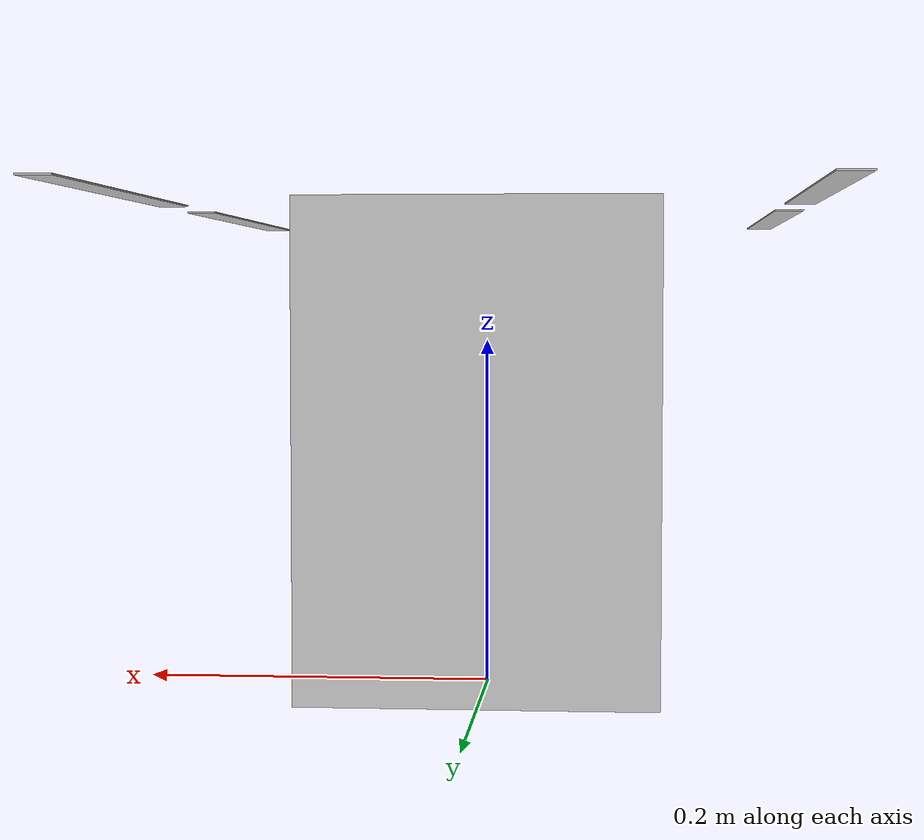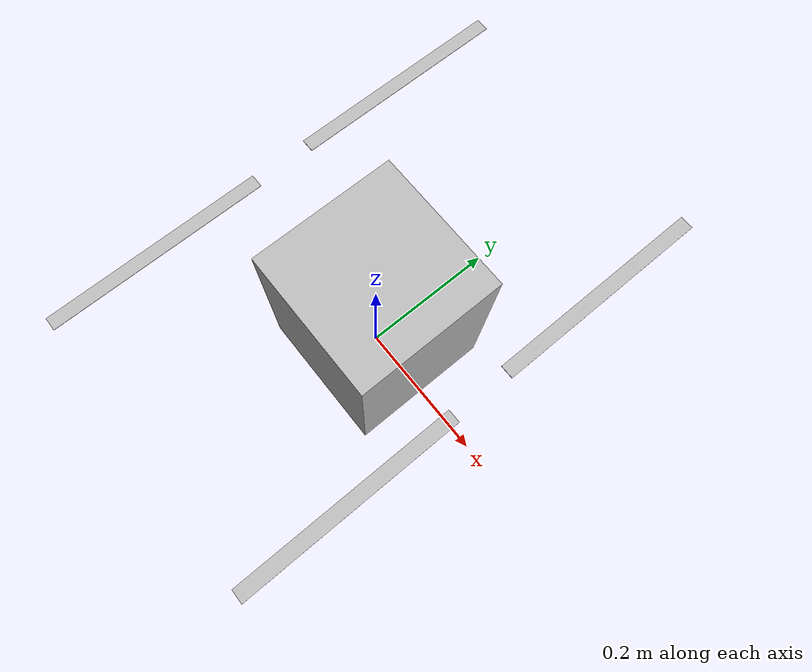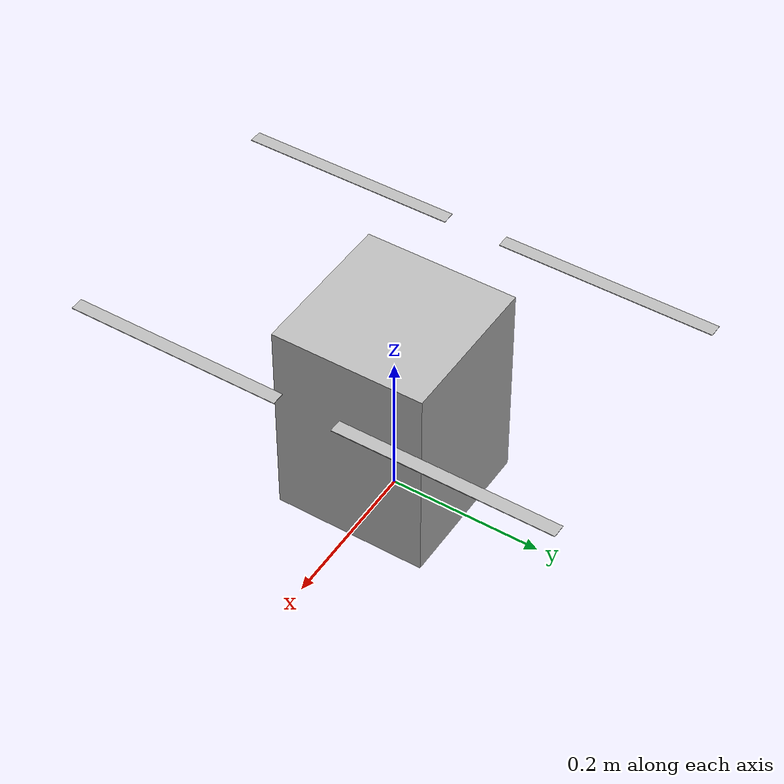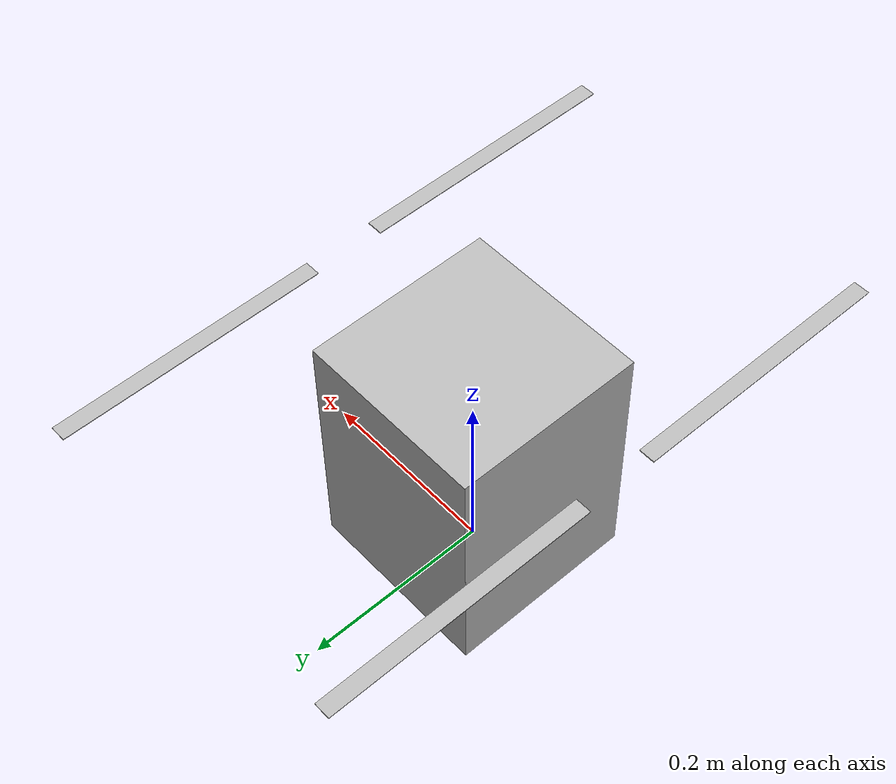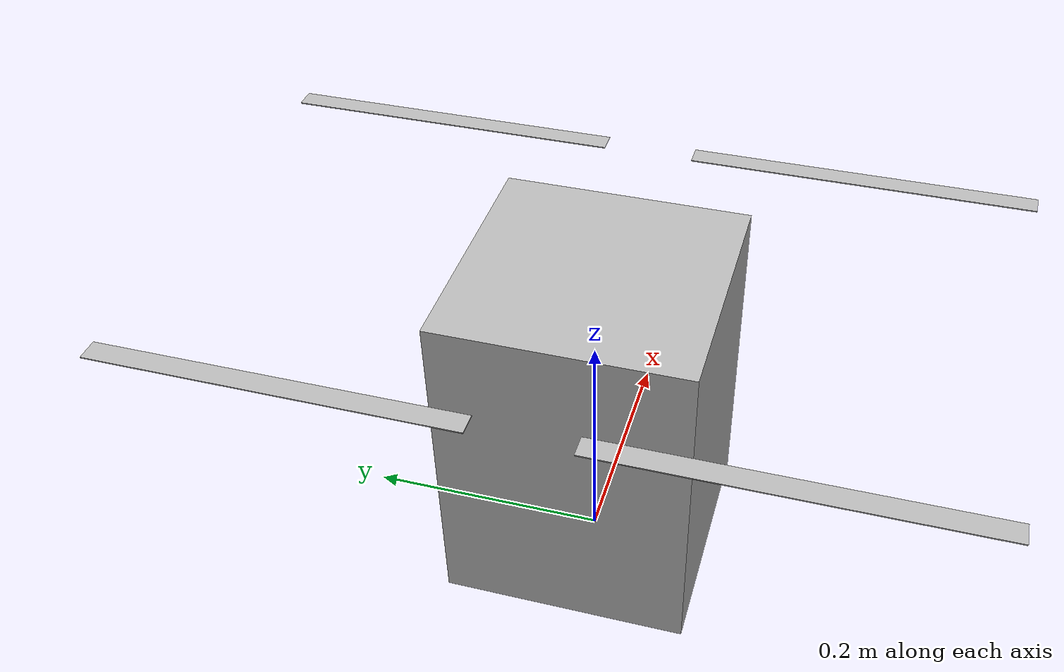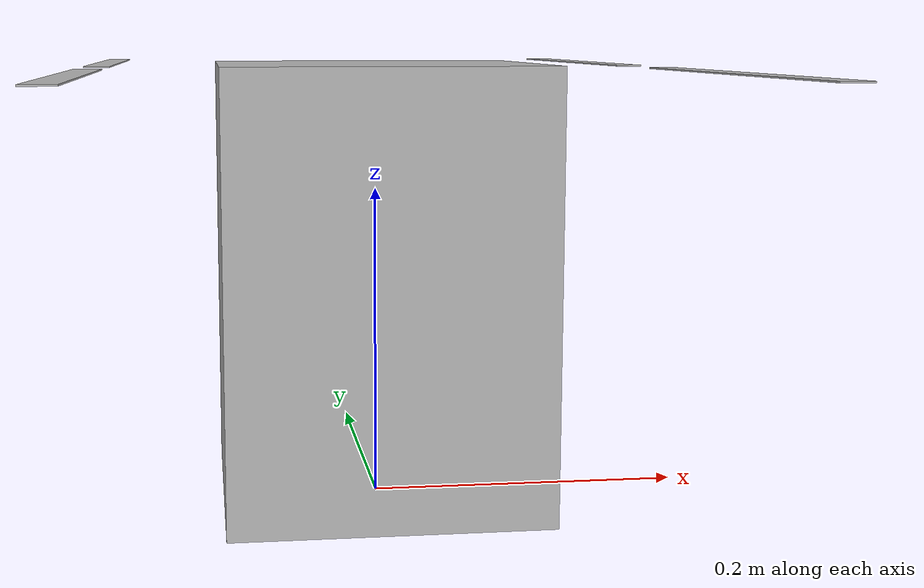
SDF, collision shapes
<?xml version="1.0" encoding="UTF-8"?>
<sdf version='1.9'>
  <model name='custom_x500'>
    <pose>0 0 0.217 0 0 1.57</pose>
    <self_collide>false</self_collide>
    <static>false</static>
    <link name="base_link">
  <inertial>
        <pose>0 0 0.015702 0 0 0</pose>
        <mass>2.245</mass>
        <inertia>
          <ixx>0.0133</ixx>
          <ixy>0</ixy>
          <ixz>0</ixz>
          <iyy>0.0133</iyy>
          <iyz>0</iyz>
          <izz>0.0249</izz>
        </inertia>
      </inertial>
      <gravity>true</gravity>
      <velocity_decay/>
      <visual name="base_link_visual">
        <pose>0 0 0 0 0 0</pose>
        <geometry>
          <mesh>
            <scale>1 1 1</scale>
            <uri>model://x500_dual_200/meshes/uav_frame_x500_simple.dae</uri>
          </mesh>
        </geometry>
      </visual>
      <!-- Collision definition -->
      <collision name="base_link_collision_0">
        <pose> 0 0 -0.076276 0 0 0</pose>
        <geometry>
          <box>
            <size>0.20 0.20 0.278 </size>
          </box>
        </geometry>
        <surface>
          <contact>
            <ode>
              <min_depth>0.001</min_depth>
              <max_vel>0</max_vel>
            </ode>
          </contact>
          <friction>
            <ode/>
          </friction>
        </surface>
      </collision>
<!-- Collision definition END-->
<!-- Flight Sensors  -->
      <sensor name="air_pressure_sensor" type="air_pressure">
        <always_on>1</always_on>
        <update_rate>50</update_rate>
        <air_pressure>
          <pressure>
            <noise type="gaussian">
              <mean>0</mean>
              <stddev>0.01</stddev>
            </noise>
          </pressure>
        </air_pressure>
      </sensor>
      <sensor name="imu_sensor" type="imu">
        <always_on>1</always_on>
        <update_rate>250</update_rate>
      </sensor>
    </link>
<!-- Propellers definition -->
    <link name="rotor_0">
        <gravity>true</gravity>
        <self_collide>false</self_collide>
        <velocity_decay/>
        <pose>0.176876 -0.176876 0.06 0 0 0</pose>
        <inertial>
            <pose>0 0 -0.02 0 0 0</pose>
              <mass>0.005</mass>
              <inertia>
                <ixx>9.75e-07</ixx>
                <ixy>0</ixy>
                <ixz>0</ixz>
                <iyy>0.000166704</iyy>
                <iyz>0</iyz>
                <izz>0.000167604</izz>
              </inertia>
        </inertial>
       <visual name="rotor_0_visual">
        <pose>0 0 0 0 0 0</pose>
        <geometry>
          <mesh>
            <scale>1 1 1</scale>
            <uri>model://x500_dual_200/meshes/holybro_propeller_ccw.dae</uri>
          </mesh>
        </geometry>
      </visual>
      <collision name="rotor_0_collision">
        <pose>0 0 0 0 0 0 </pose>
        <geometry>
          <box>
            <size>0.2792307692307692 0.016923076923076923 0.0008461538461538462</size>
          </box>
        </geometry>
        <surface>
          <contact>
            <ode>
              <min_depth>0.001</min_depth>
              <max_vel>0</max_vel>
            </ode>
          </contact>
          <friction>
            <ode/>
          </friction>
        </surface>
      </collision>
    </link>
    <joint name="rotor_0_joint" type="revolute">
      <parent>base_link</parent>
      <child>rotor_0</child>
      <axis>
        <xyz>0 0 1</xyz>
        <limit>
          <lower>-1e+16</lower>
          <upper>1e+16</upper>
        </limit>
        <dynamics>
          <spring_reference>0</spring_reference>
          <spring_stiffness>0</spring_stiffness>
        </dynamics>
      </axis>
    </joint>

    <link name="rotor_1">
        <gravity>true</gravity>
        <self_collide>false</self_collide>
        <velocity_decay/>
        <pose>-0.176876 0.176876 0.06 0 0 0</pose>
        <inertial>
            <pose>0 0 0 0 0 0</pose>
              <mass>0.005</mass>
              <inertia>
                <ixx>9.75e-07</ixx>
                <ixy>0</ixy>
                <ixz>0</ixz>
                <iyy>0.000166704</iyy>
                <iyz>0</iyz>
                <izz>0.000167604</izz>
              </inertia>
        </inertial>
       <visual name="rotor_1_visual">
        <pose>0 0 0 0 0 0</pose>
        <geometry>
          <mesh>
            <scale>1 1 1</scale>
            <uri>model://x500_dual_200/meshes/holybro_propeller_ccw.dae</uri>
          </mesh>
        </geometry>
      </visual>
      <collision name="rotor_1_collision">
        <pose>0 0 0 0 0 0 </pose>
        <geometry>
          <box>
            <size>0.2792307692307692 0.016923076923076923 0.0008461538461538462</size>
          </box>
        </geometry>
        <surface>
          <contact>
            <ode>
              <min_depth>0.001</min_depth>
              <max_vel>0</max_vel>
            </ode>
          </contact>
          <friction>
            <ode/>
          </friction>
        </surface>
      </collision>
    </link>
    <joint name="rotor_1_joint" type="revolute">
      <parent>base_link</parent>
      <child>rotor_1</child>
      <axis>
        <xyz>0 0 1</xyz>
        <limit>
          <lower>-1e+16</lower>
          <upper>1e+16</upper>
        </limit>
        <dynamics>
          <spring_reference>0</spring_reference>
          <spring_stiffness>0</spring_stiffness>
        </dynamics>
      </axis>
    </joint>

    <link name="rotor_2">
        <gravity>true</gravity>
        <self_collide>false</self_collide>
        <velocity_decay/>
        <pose> 0.176876 0.176876 0.06 0 0 0</pose>
        <inertial>
              <mass>0.005</mass>
              <inertia>
                <ixx>9.75e-07</ixx>
                <ixy>0</ixy>
                <ixz>0</ixz>
                <iyy>0.000166704</iyy>
                <iyz>0</iyz>
                <izz>0.000167604</izz>
              </inertia>
        </inertial>
       <visual name="rotor_2_visual">
        <pose>0 0 0 0 0 0</pose>
        <geometry>
          <mesh>
            <scale>1 1 1</scale>
            <uri>model://x500_dual_200/meshes/holybro_propeller_cw.dae</uri>
          </mesh>
        </geometry>
      </visual>
      <collision name="rotor_2_collision">
        <pose>0 0 0 0 0 0 </pose>
        <geometry>
          <box>
            <size>0.2792307692307692 0.016923076923076923 0.0008461538461538462</size>
          </box>
        </geometry>
        <surface>
          <contact>
            <ode>
              <min_depth>0.001</min_depth>
              <max_vel>0</max_vel>
            </ode>
          </contact>
          <friction>
            <ode/>
          </friction>
        </surface>
      </collision>
    </link>
    <joint name="rotor_2_joint" type="revolute">
      <parent>base_link</parent>
      <child>rotor_2</child>
      <axis>
        <xyz>0 0 1</xyz>
        <limit>
          <lower>-1e+16</lower>
          <upper>1e+16</upper>
        </limit>
        <dynamics>
          <spring_reference>0</spring_reference>
          <spring_stiffness>0</spring_stiffness>
        </dynamics>
      </axis>
    </joint>

    <link name="rotor_3">
        <gravity>true</gravity>
        <self_collide>false</self_collide>
        <velocity_decay/>
        <pose> -0.176876 -0.176876 0.06 0 0 0</pose>
        <inertial>
            <pose>0 0 -0.02 0 0 0</pose>
              <mass>0.005</mass>
              <inertia>
                <ixx>9.75e-07</ixx>
                <ixy>0</ixy>
                <ixz>0</ixz>
                <iyy>0.000166704</iyy>
                <iyz>0</iyz>
                <izz>0.000167604</izz>
              </inertia>
        </inertial>
       <visual name="rotor_3_visual">
        <pose>0 0 0 0 0 0</pose>
        <geometry>
          <mesh>
            <scale>1 1 1</scale>
            <uri>model://x500_dual_200/meshes/holybro_propeller_cw.dae</uri>
          </mesh>
        </geometry>
      </visual>
      <collision name="rotor_3_collision">
        <pose>0 0 0 0 0 0 </pose>
        <geometry>
          <box>
            <size>0.2792307692307692 0.016923076923076923 0.0008461538461538462</size>
          </box>
        </geometry>
        <surface>
          <contact>
            <ode>
              <min_depth>0.001</min_depth>
              <max_vel>0</max_vel>
            </ode>
          </contact>
          <friction>
            <ode/>
          </friction>
        </surface>
      </collision>
    </link>
    <joint name="rotor_3_joint" type="revolute">
      <parent>base_link</parent>
      <child>rotor_3</child>
      <axis>
        <xyz>0 0 1</xyz>
        <limit>
          <lower>-1e+16</lower>
          <upper>1e+16</upper>
        </limit>
        <dynamics>
          <spring_reference>0</spring_reference>
          <spring_stiffness>0</spring_stiffness>
        </dynamics>
      </axis>
    </joint>
<!-- Propellers definition END-->

   <plugin filename="gz-sim-multicopter-motor-model-system" name="gz::sim::systems::MulticopterMotorModel">
      <jointName>rotor_0_joint</jointName>
      <linkName>rotor_0</linkName>
      <turningDirection>ccw</turningDirection>
      <timeConstantUp>0.0125</timeConstantUp>
      <timeConstantDown>0.025</timeConstantDown>
      <maxRotVelocity>1225.22</maxRotVelocity>
      <motorConstant>11.1913e-06</motorConstant>
      <momentConstant>0.016</momentConstant>
      <commandSubTopic>command/motor_speed</commandSubTopic>
      <motorNumber>0</motorNumber>
      <rotorDragCoefficient>8.06428e-05</rotorDragCoefficient>
      <rollingMomentCoefficient>1e-06</rollingMomentCoefficient>
      <rotorVelocitySlowdownSim>10</rotorVelocitySlowdownSim>
      <motorType>velocity</motorType>
    </plugin>
    <plugin filename="gz-sim-multicopter-motor-model-system" name="gz::sim::systems::MulticopterMotorModel">
      <jointName>rotor_1_joint</jointName>
      <linkName>rotor_1</linkName>
      <turningDirection>ccw</turningDirection>
      <timeConstantUp>0.0125</timeConstantUp>
      <timeConstantDown>0.025</timeConstantDown>
      <maxRotVelocity>1225.22</maxRotVelocity>
      <motorConstant>11.1913e-06</motorConstant>
      <momentConstant>0.016</momentConstant>
      <commandSubTopic>command/motor_speed</commandSubTopic>
      <motorNumber>1</motorNumber>
      <rotorDragCoefficient>8.06428e-05</rotorDragCoefficient>
      <rollingMomentCoefficient>1e-06</rollingMomentCoefficient>
      <rotorVelocitySlowdownSim>10</rotorVelocitySlowdownSim>
      <motorType>velocity</motorType>
    </plugin>
    <plugin filename="gz-sim-multicopter-motor-model-system" name="gz::sim::systems::MulticopterMotorModel">
      <jointName>rotor_2_joint</jointName>
      <linkName>rotor_2</linkName>
      <turningDirection>cw</turningDirection>
      <timeConstantUp>0.0125</timeConstantUp>
      <timeConstantDown>0.025</timeConstantDown>
      <maxRotVelocity>1225.22</maxRotVelocity>
      <motorConstant>11.1913e-06</motorConstant>
      <momentConstant>0.016</momentConstant>
      <commandSubTopic>command/motor_speed</commandSubTopic>
      <motorNumber>2</motorNumber>
      <rotorDragCoefficient>8.06428e-05</rotorDragCoefficient>
      <rollingMomentCoefficient>1e-06</rollingMomentCoefficient>
      <rotorVelocitySlowdownSim>10</rotorVelocitySlowdownSim>
      <motorType>velocity</motorType>
    </plugin>
    <plugin filename="gz-sim-multicopter-motor-model-system" name="gz::sim::systems::MulticopterMotorModel">
      <jointName>rotor_3_joint</jointName>
      <linkName>rotor_3</linkName>
      <turningDirection>cw</turningDirection>
      <timeConstantUp>0.0125</timeConstantUp>
      <timeConstantDown>0.025</timeConstantDown>
      <maxRotVelocity>1225.22</maxRotVelocity>
      <motorConstant>11.1913e-06</motorConstant>
      <momentConstant>0.016</momentConstant>
      <commandSubTopic>command/motor_speed</commandSubTopic>
      <motorNumber>3</motorNumber>
      <rotorDragCoefficient>8.06428e-05</rotorDragCoefficient>
      <rollingMomentCoefficient>1e-06</rollingMomentCoefficient>
      <rotorVelocitySlowdownSim>10</rotorVelocitySlowdownSim>
      <motorType>velocity</motorType>
    </plugin>
  </model>
</sdf>
